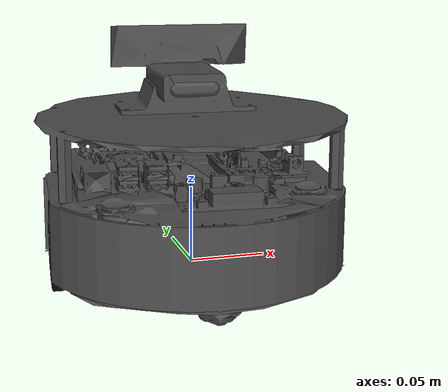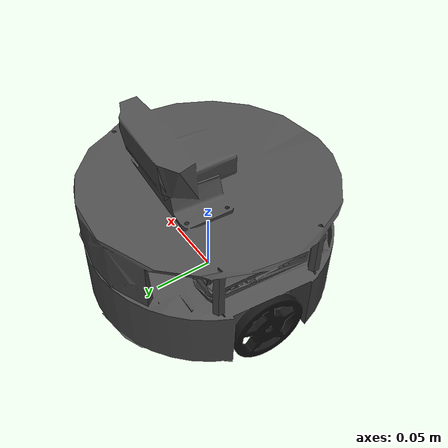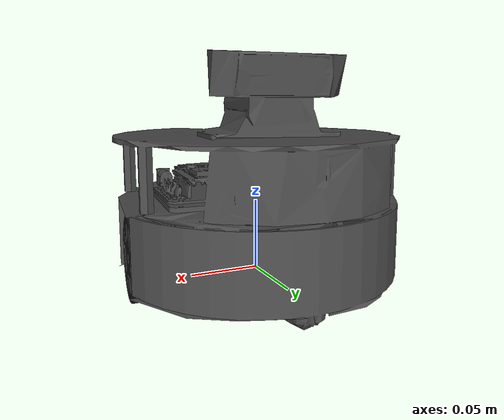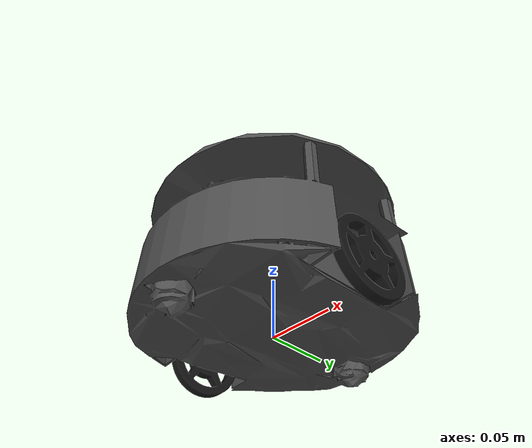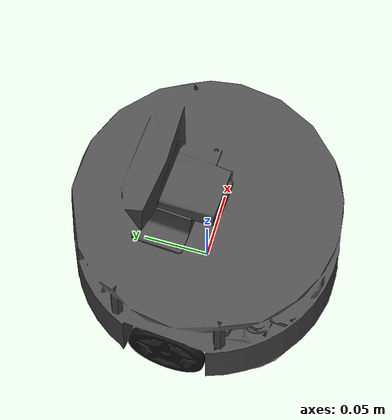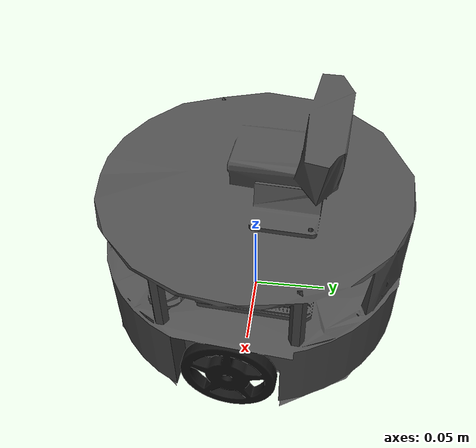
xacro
<?xml version="1.0"?>
<robot xmlns:xacro="http://www.ros.org/wiki/xacro" name="colmibot">

  <!-- Para RViz solo: use_gazebo:=false -->
  <xacro:arg name="use_gazebo" default="true"/>

  <!-- Dimensiones CAD -->
  <xacro:property name="wheel_radius" value="0.03"/>
  <xacro:property name="wheel_width" value="0.012"/>
  <xacro:property name="wheel_y" value="0.087"/>
  <xacro:property name="wheel_z" value="0.0165"/>
  <xacro:property name="wheel_separation" value="${2*wheel_y}"/>
  <xacro:property name="caster_x" value="0.08"/>
  <xacro:property name="caster_radius" value="0.0135"/>
  <xacro:property name="PI" value="3.14159265359"/>

  <material name="gris"><color rgba="0.3 0.3 0.3 1"/></material>
  <material name="negro"><color rgba="0.08 0.08 0.08 1"/></material>

  <xacro:property name="body_yaw" value="1.5"/>

  <link name="base_footprint"/>
  <joint name="base_footprint_joint" type="fixed">
    <parent link="base_footprint"/>
    <child link="base_link"/>
    <origin xyz="0 0 0" rpy="0 0 ${body_yaw}"/>
  </joint>

  <!-- ===================== CUERPO ===================== -->
  <link name="base_link">
    <inertial>
      <!-- Centro de masa e inercia del CAD, rotados al marco base_link -->
      <origin xyz="-0.0053112 0.00035325 0.047942" rpy="0 0 0"/>
      <mass value="0.93582"/>
      <inertia ixx="0.0011494" ixy="-2.4863e-06" ixz="1.2675e-06"
               iyy="0.0011063" iyz="5.497e-07" izz="0.0021693"/>
    </inertial>
    <visual>
      <origin xyz="0 0 0" rpy="0 0 0"/>
      <geometry>
        <mesh filename="package://robot_description/meshes/base_link.stl"/>
      </geometry>
      <material name="gris"/>
    </visual>
    <!-- Colision simple: la malla de 160k caras no sirve para fisica -->
    <collision>
      <origin xyz="0 0 0.0769" rpy="0 0 0"/>
      <geometry>
        <cylinder radius="0.1" length="0.1537"/>
      </geometry>
    </collision>
    <!-- Ruedas locas: esferas sin friccion -->
    <collision name="caster_front_collision">
      <origin xyz="${caster_x} 0 0" rpy="0 0 0"/>
      <geometry><sphere radius="${caster_radius}"/></geometry>
    </collision>
    <collision name="caster_rear_collision">
      <origin xyz="${-caster_x} 0 0" rpy="0 0 0"/>
      <geometry><sphere radius="${caster_radius}"/></geometry>
    </collision>
  </link>

  <!-- ===================== RUEDA IZQUIERDA ===================== -->
  <link name="wheel_left">
    <inertial>
      <origin xyz="0 0 0" rpy="0 0 0"/>
      <mass value="0.016132"/>
      <inertia ixx="3.8963e-06" ixy="0" ixz="0"
               iyy="7.5952e-06" iyz="0" izz="3.8962e-06"/>
    </inertial>
    <visual>
      <origin xyz="0 0 0" rpy="0 0 0"/>
      <geometry>
        <mesh filename="package://robot_description/meshes/wheel_left.stl"/>
      </geometry>
      <material name="negro"/>
    </visual>
    <collision>
      <origin xyz="0 0 0" rpy="${PI/2} 0 0"/>
      <geometry>
        <cylinder radius="${wheel_radius}" length="${wheel_width}"/>
      </geometry>
    </collision>
  </link>

  <joint name="wheel_left_joint" type="continuous">
    <parent link="base_link"/>
    <child link="wheel_left"/>
    <origin xyz="0 ${wheel_y} ${wheel_z}" rpy="0 0 0"/>
    <axis xyz="0 1 0"/>
    <dynamics damping="0.01" friction="0.0"/>
  </joint>

  <!-- ===================== RUEDA DERECHA ===================== -->
  <link name="wheel_right">
    <inertial>
      <origin xyz="0 0 0" rpy="0 0 0"/>
      <mass value="0.016132"/>
      <inertia ixx="3.8963e-06" ixy="0" ixz="0"
               iyy="7.5952e-06" iyz="0" izz="3.8962e-06"/>
    </inertial>
    <visual>
      <origin xyz="0 0 0" rpy="0 0 0"/>
      <geometry>
        <mesh filename="package://robot_description/meshes/wheel_right.stl"/>
      </geometry>
      <material name="negro"/>
    </visual>
    <collision>
      <origin xyz="0 0 0" rpy="${PI/2} 0 0"/>
      <geometry>
        <cylinder radius="${wheel_radius}" length="${wheel_width}"/>
      </geometry>
    </collision>
  </link>

  <joint name="wheel_right_joint" type="continuous">
    <parent link="base_link"/>
    <child link="wheel_right"/>
    <origin xyz="0 ${-wheel_y} ${wheel_z}" rpy="0 0 0"/>
    <axis xyz="0 1 0"/>
    <dynamics damping="0.01" friction="0.0"/>
  </joint>

</robot>
